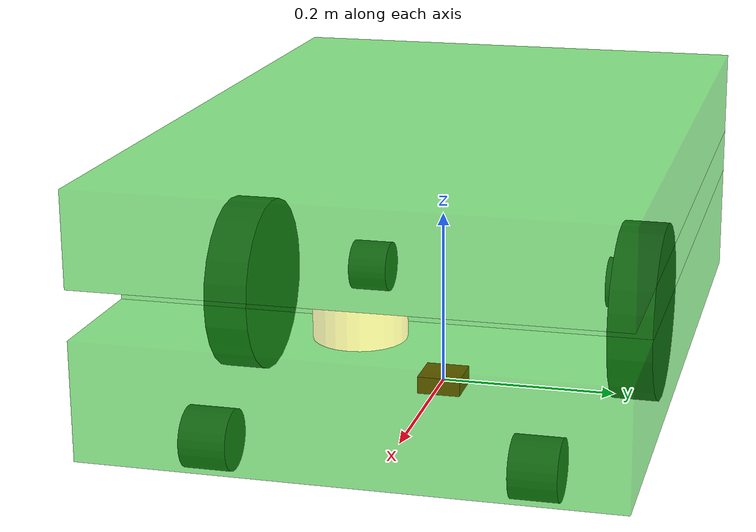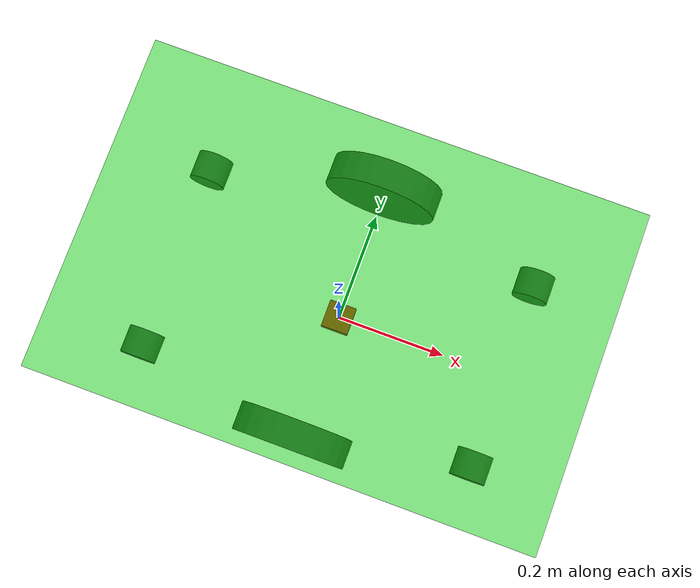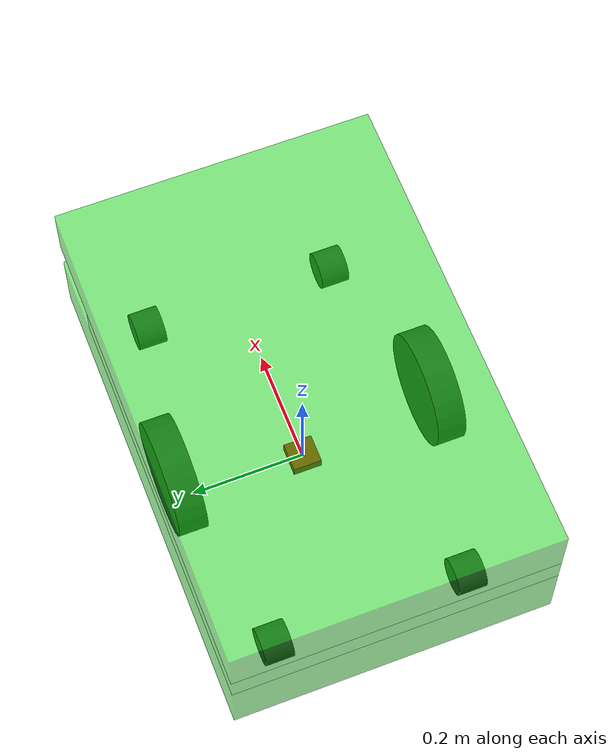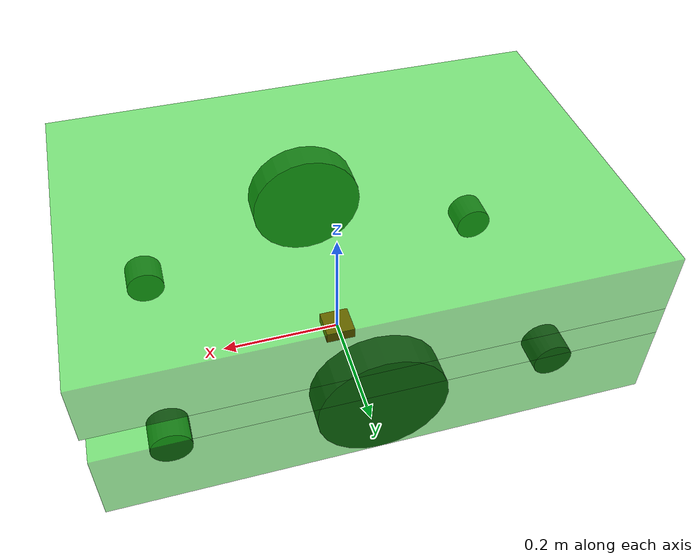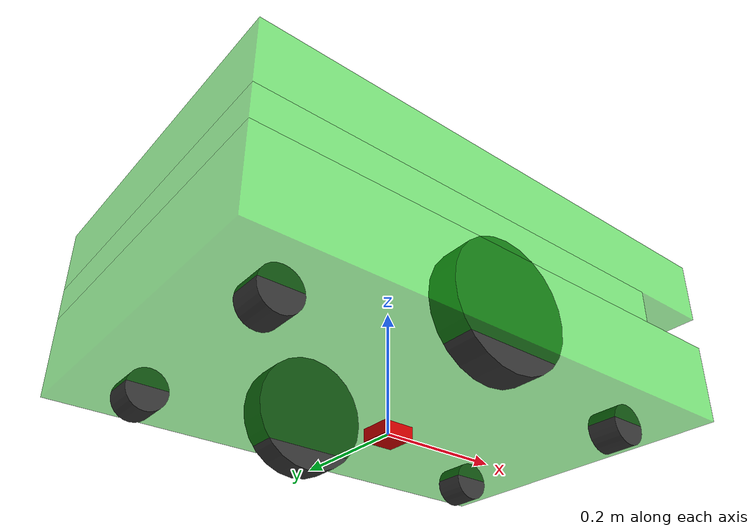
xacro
<?xml version="1.0"?>

<robot name="box_robot" xmlns:xacro="http://ros.org/wiki/xacro">

   <!-- Include all component files -->
   <xacro:include filename="$(find cartographer_ros)/urdf/aiv_virtual_full/materials.urdf.xacro" />
   <xacro:include filename="$(find cartographer_ros)/urdf/aiv_virtual_full/base.urdf.xacro" />

   <!-- Add the base and wheels -->
   <base name="base" color="TransparentGreen"/>

</robot>

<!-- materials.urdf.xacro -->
<robot>

  <!-- Put all the color definitions in a separate file -->

  <material name="Black">
    <color rgba="0.2 0.2 0.2 1.0"/>
  </material>

   <material name="TransparentBlack">
    <color rgba="0.2 0.2 0.2 0.8"/>
  </material>

  <material name="Orange">
    <color rgba="1.0  0.55 0.0 1.0"/>
  </material>

  <material name="Grey">
    <color rgba="0.7 0.7 0.7 1.0"/>
  </material>

  <material name="DarkGrey">
    <color rgba="0.3 0.3 0.3 1.0"/>
  </material>

  <material name="Red">
    <color rgba="0.8 0.0 0.0 1.0"/>
  </material>

  <material name="White">
    <color rgba="1.0 1.0 1.0 1.0"/>
  </material>

  <material name="OffWhite">
    <color rgba="0.8 0.8 0.8 1.0"/>
  </material>

  <material name="whiteTransparent">
	<color rgba="0.7 0.7 0.7 .5"/>
  </material>

  <material name="Blue">
    <color rgba="0.0 0.0 0.8 1.0"/>
  </material>

  <material name="Green">
    <color rgba="0.0 0.8 0.0 1.0"/>
  </material>

  <material name="TransparentGreen">
    <color rgba="0.0 0.8 0.0 0.5"/>
  </material>

</robot>

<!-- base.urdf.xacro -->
<robot name="base" xmlns:xacro="http://ros.org/wiki/xacro">

  <!-- Define a number of dimensions using properties -->
  <property name="base_box_length" value="0.825" />   <!-- length=0.815(base)+0.01(mechanical CA) -->
  <property name="base_box_width" value="0.553" />
  <property name="base_box_height" value="0.126" />
  <property name="base_equal_radius" value="0.5" />
  <property name="base_box_elevation" value="0.039" />

  <property name="mid_box_length" value="0.689" />
  <property name="mid_box_width" value="0.553" />
  <property name="mid_box_height" value="0.052" />
  <property name="mid_box_offset_x" value="0.068" />

  <property name="top_box_length" value="0.825" />
  <property name="top_box_width" value="0.553" />
  <property name="top_box_height" value="0.1" />

  <property name="active_wheel_length" value="0.05" />
  <property name="active_wheel_radius" value="0.1" />
  <property name="active_wheel_offset_x" value="0" />
  <property name="active_wheel_offset_y" value="0.229" />
  <property name="active_wheel_offset_z" value="0.0" />

  <property name="passive_wheel_length" value="0.05" />
  <property name="passive_wheel_radius" value="0.0325" />
  <property name="passive_wheel_offset_x" value="0.31" />
  <property name="passive_wheel_offset_y" value="0.17" />
  <property name="passive_wheel_offset_z" value="-0.068" />

  <property name="laser_height" value="0.052" />
  <property name="laser_radius" value="0.046" />
  <property name="laser_offset_x" value="0.3445" />
  <property name="laser_offset_z" value="0.094" />

  <property name="PI" value="3.1415926" />

  <!-- define a active/passive wheel -->
  <macro name="activewheel" params="parent suffix reflect color">
    <joint name="${parent}_${suffix}_wheel_joint" type="continuous">
      <axis xyz="0 0 1" />
      <origin xyz="${active_wheel_offset_x} ${reflect*active_wheel_offset_y} ${active_wheel_offset_z}" rpy="${reflect*PI/2} 0 0" />
      <parent link="${parent}_link_virtual"/>
      <child link="${parent}_${suffix}_wheel_link_virtual"/>
    </joint>

    <link name="${parent}_${suffix}_wheel_link_virtual">
      <visual>
        <origin xyz="0 0 0" rpy="0 0 0" />
        <geometry>
          <cylinder radius="${active_wheel_radius}" length="${active_wheel_length}"/>
        </geometry>
        <material name="${color}" />
      </visual>
    </link>
  </macro>

  <macro name="passivewheel" params="parent suffix reflectx reflecty  color">
    <joint name="${parent}_${suffix}_wheel_joint" type="continuous">
      <axis xyz="0 0 1" />
      <origin xyz="${reflectx*passive_wheel_offset_x} ${reflecty*passive_wheel_offset_y} ${passive_wheel_offset_z}" rpy="${reflectx*PI/2} 0 0" />
      <parent link="${parent}_link_virtual"/>
      <child link="${parent}_${suffix}_wheel_link_virtual"/>
    </joint>

    <link name="${parent}_${suffix}_wheel_link_virtual">
      <visual>
        <origin xyz="0 0 0" rpy="0 0 0" />
        <geometry>
          <cylinder radius="${passive_wheel_radius}" length="${passive_wheel_length}"/>
        </geometry>
        <material name="${color}" />
      </visual>
    </link>
  </macro>

  <!-- The base xacro macro -->
  <macro name="base" params="name color">
    <link name="${name}_link_virtual">
        <visual>
            <origin xyz="0 0 0" rpy="0 0 0"/>
            <geometry>
                <box size="${base_box_length} ${base_box_width} ${base_box_height}"/>
            </geometry>
            <material name="TransparentGreen"/>
        </visual>
        <collision>
            <origin xyz="0 0 0" rpy="0 0 0"/>
            <geometry>
                <cylinder length="0.3" radius="${base_equal_radius}"/>
            </geometry>
        </collision>
    </link>
  </macro>

  <link name="base_footprint_virtual">
      <visual>
        <origin xyz="0 0 0" rpy="0 0 0" />
        <geometry>
          <box size="0.05 0.05 0.02" />
        </geometry>
        <material name="Red" />
      </visual>
  </link>

  <joint name="base_joint" type="fixed">
    <origin xyz="0 0 ${base_box_height/2 + base_box_elevation}" rpy="0 0 0" />
    <parent link="base_footprint_virtual"/>
    <child link="base_link_virtual" />
  </joint>

   <!-- Add the wheels instance-->
   <activewheel parent="base" suffix="l" reflect="1" color="Black"/>
   <activewheel parent="base" suffix="r" reflect="-1" color="Black"/>
   <passivewheel parent="base" suffix="lf" reflectx="1" reflecty="1" color="Black"/>
   <passivewheel parent="base" suffix="rf" reflectx="1" reflecty="-1" color="Black"/>
   <passivewheel parent="base" suffix="lr" reflectx="-1" reflecty="1" color="Black"/>
   <passivewheel parent="base" suffix="rr" reflectx="-1" reflecty="-1" color="Black"/>

  <link name="mid_layer_virtual">
      <visual>
        <origin xyz="0 0 0" rpy="0 0 0" />
        <geometry>
          <box size="${mid_box_length} ${mid_box_width} ${mid_box_height}" />
        </geometry>
        <material name="TransparentGreen" />
      </visual>
  </link>

  <joint name="mid_layer_joint" type="fixed">
    <origin xyz="-${mid_box_offset_x} 0 ${base_box_height/2 + mid_box_height/2}" rpy="0 0 0" />
    <parent link="base_link_virtual"/>
    <child link="mid_layer_virtual" />
  </joint>

  <link name="top_layer_virtual">
      <visual>
        <origin xyz="0 0 0" rpy="0 0 0" />
        <geometry>
          <box size="${top_box_length} ${top_box_width} ${top_box_height}" />
        </geometry>
        <material name="TransparentGreen" />
      </visual>
  </link>

	<joint name="top_layer_joint" type="fixed">
		<origin xyz="0 0 ${base_box_height/2 + mid_box_height + top_box_height/2}" rpy="0 0 0" />
		<parent link="base_link_virtual"/>
		<child link="top_layer_virtual" />
	</joint>

	<link name="laser_virtual">
		<visual>
	  		<geometry>
	   			<cylinder radius="${laser_radius}" length="${laser_height}"/>
	  		</geometry>
	  		<material name="yellow">
		  		<color rgba="1 1 0 0.4"/>
	  		</material>
		</visual>
	</link>

	<joint name="laser_joint" type="fixed">
		<origin rpy="0  0  0" xyz="${laser_offset_x}  0  ${laser_offset_z}"/>
		<parent link="base_link_virtual"/>
		<child link="laser_virtual"/>
	</joint>

</robot>
